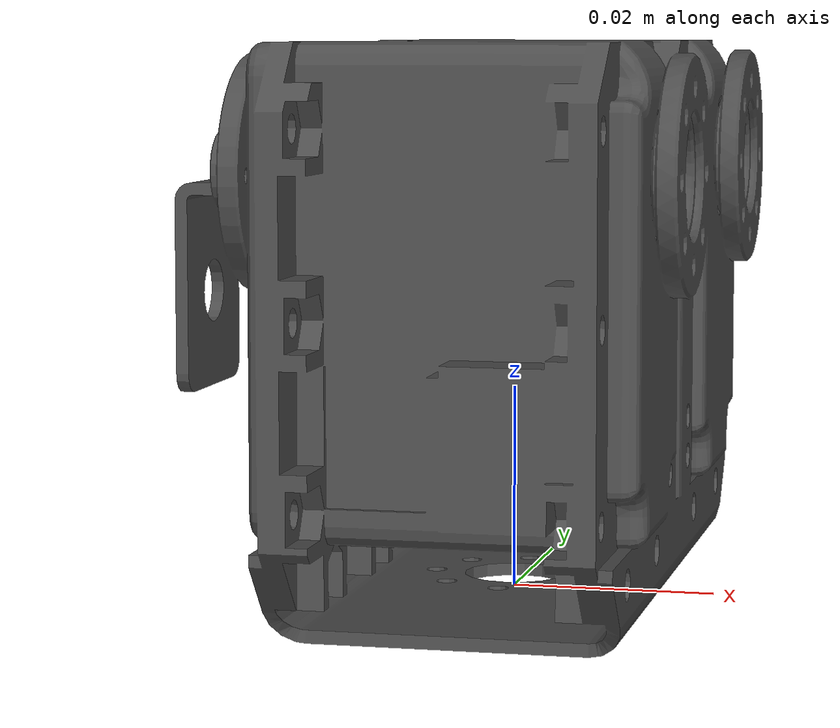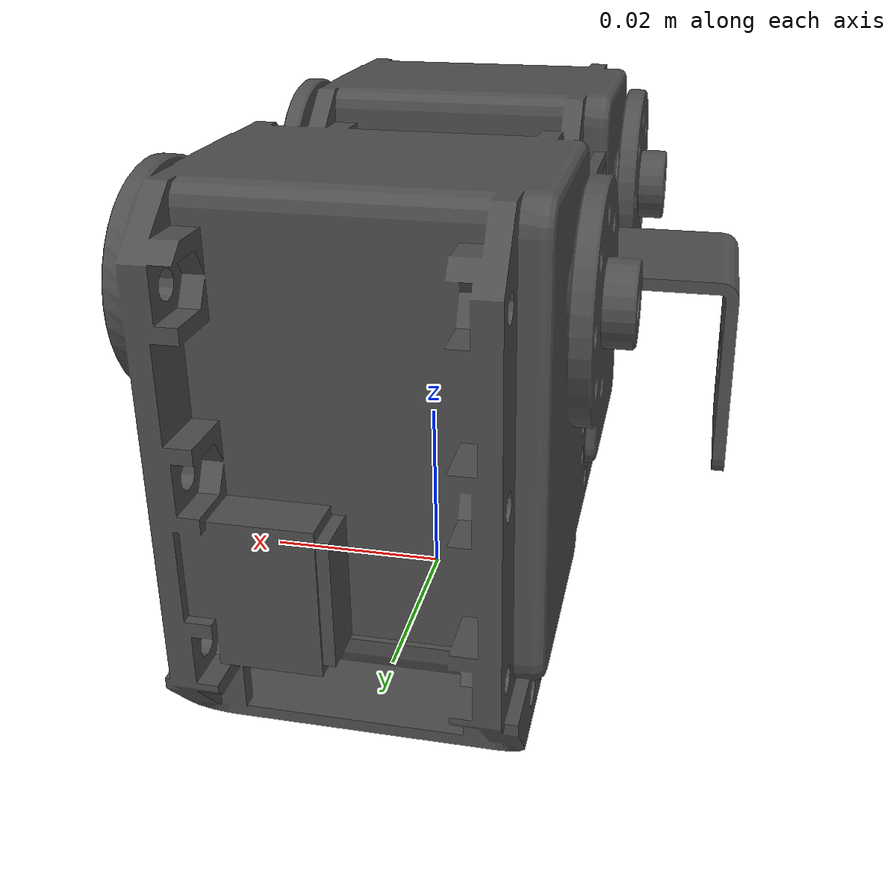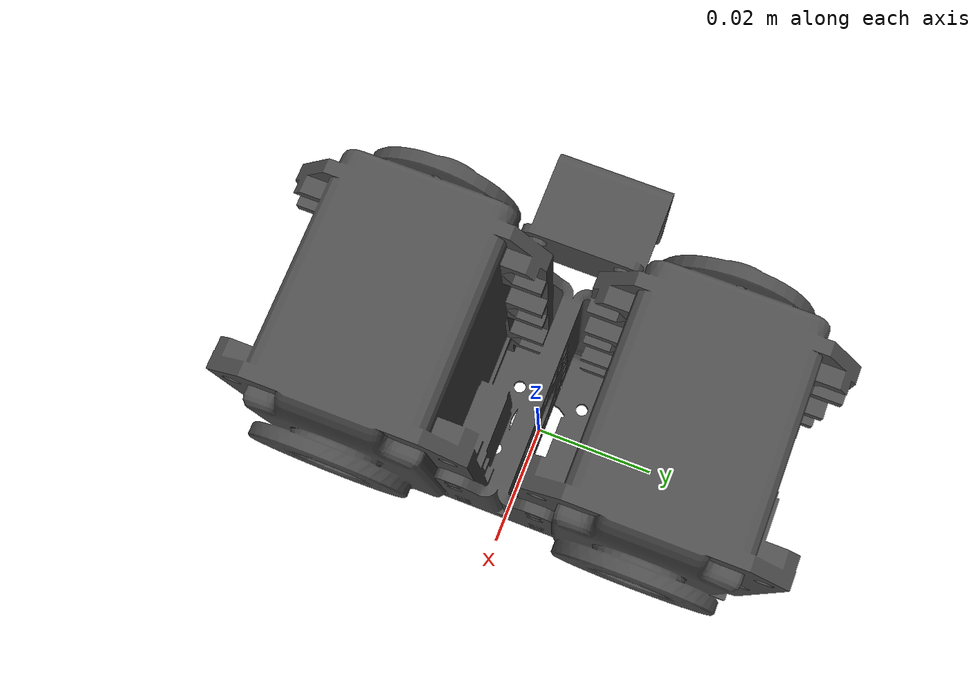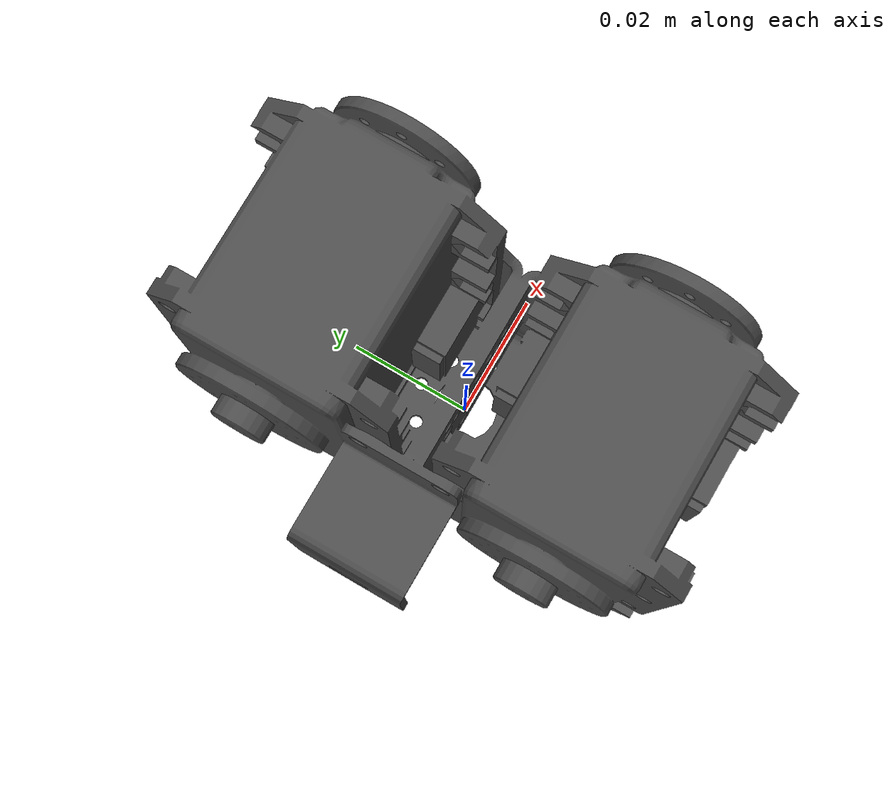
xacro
<robot name="wrist_link"><link name="wrist_link">
    <inertial>
      <origin rpy="0 0 0" xyz="-0.000140374211043626 4.00707618562063E-10 0.0303673809619358" />
      <mass value="0.717337417215465" />
      <inertia ixx="0.000486392340366094" ixy="4.20757000035677E-12" ixz="-3.91843889020299E-06" iyy="0.000211170064630335" iyz="2.79335159568522E-12" izz="0.000437528795624211" />
    </inertial>
    <visual>
      <origin rpy="0 0 0" xyz="0 0 0" />
      <geometry>
        <mesh filename="package://robotican_description/komodo/meshes/wrist_link.STL" />
      </geometry>
      <material name="">
        <color rgba="0.3 0.3 0.3 1" />
      </material>
    </visual>
    <collision>
      <origin rpy="0 0 0" xyz="0 0 0" />
      <geometry>
        <mesh filename="package://robotican_description/komodo/meshes/wrist_link.STL" />
      </geometry>
    </collision>
  </link>
  </robot>
